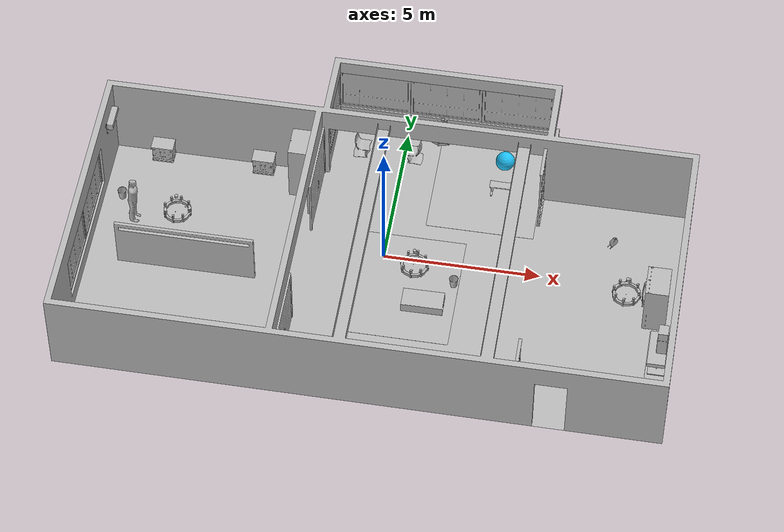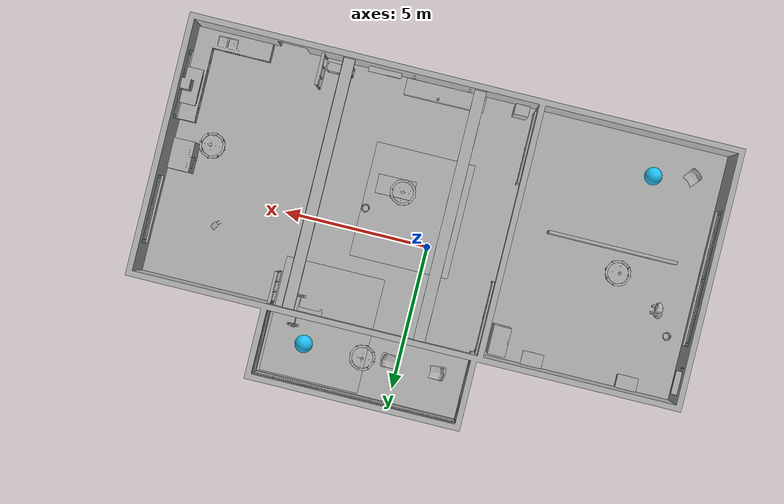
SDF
<sdf version="1.7">
 <world name="default">
  <gravity>0 0 -9.8</gravity>
  <magnetic_field>6e-06 2.3e-05 -4.2e-05</magnetic_field>
  <atmosphere type="adiabatic"/>
  <physics name="default_physics" default="0" type="ode">
   <max_step_size>0.001</max_step_size>
   <real_time_factor>1</real_time_factor>
   <real_time_update_rate>1000</real_time_update_rate>
  </physics>
  <scene>
   <ambient>0.4 0.4 0.4 1</ambient>
   <background>0.7 0.7 0.7 1</background>
   <shadows>0</shadows>
   <grid>0</grid>
   <origin_visual>0</origin_visual>
  </scene>
  <spherical_coordinates>
   <surface_model>EARTH_WGS84</surface_model>
   <latitude_deg>0</latitude_deg>
   <longitude_deg>0</longitude_deg>
   <elevation>0</elevation>
   <heading_deg>0</heading_deg>
  </spherical_coordinates>
  <model name="AirconditionerA_01_001">
   <static>1</static>
   <frame name="aws_robomaker_residential_AirconditionerA_01::__model__" attached_to="aws_robomaker_residential_AirconditionerA_01::link">
    <pose relative_to="__model__">0 0 0 0 -0 0</pose>
   </frame>
   <link name="aws_robomaker_residential_AirconditionerA_01::link">
    <inertial><mass>1</mass></inertial>
    <collision name="collision">
     <geometry>
      <mesh>
       <uri>model://aws_robomaker_residential_AirconditionerA_01/meshes/aws_AirconditionerA_01_collision.DAE</uri>
       <scale>1 1 1</scale>
      </mesh>
     </geometry>
    </collision>
    <visual name="visual">
     <geometry>
      <mesh>
       <uri>model://aws_robomaker_residential_AirconditionerA_01/meshes/aws_AirconditionerA_01_visual.DAE</uri>
      </mesh>
     </geometry>
     <meta><layer>1</layer></meta>
    </visual>
    <pose relative_to="aws_robomaker_residential_AirconditionerA_01::__model__">0 0 0 0 -0 0</pose>
   </link>
   <static>1</static>
   <pose>-9.19941 2.41123 2.08454 0 -0 0</pose>
  </model>
  <model name="AirconditionerB_01_001">
   <static>1</static>
   <frame name="aws_robomaker_residential_AirconditionerB_01::__model__" attached_to="aws_robomaker_residential_AirconditionerB_01::link">
    <pose relative_to="__model__">0 0 0 0 -0 0</pose>
   </frame>
   <link name="aws_robomaker_residential_AirconditionerB_01::link">
    <inertial><mass>1</mass></inertial>
    <collision name="collision">
     <geometry>
      <mesh>
       <uri>model://aws_robomaker_residential_AirconditionerB_01/meshes/aws_AirconditionerB_01_collision.DAE</uri>
       <scale>1 1 1</scale>
      </mesh>
     </geometry>
    </collision>
    <visual name="visual">
     <geometry>
      <mesh>
       <uri>model://aws_robomaker_residential_AirconditionerB_01/meshes/aws_AirconditionerB_01_visual.DAE</uri>
      </mesh>
     </geometry>
     <meta><layer>1</layer></meta>
    </visual>
    <pose relative_to="aws_robomaker_residential_AirconditionerB_01::__model__">0 0 0 0 -0 0</pose>
   </link>
   <pose>-2.00466 -5.22661 0.003485 0 -0 0</pose>
  </model>
  <model name="Ball_01_001">
   <static>1</static>
   <frame name="aws_robomaker_residential_Ball_01::__model__" attached_to="aws_robomaker_residential_Ball_01::link">
    <pose relative_to="__model__">0 0 0 0 -0 0</pose>
   </frame>
   <link name="aws_robomaker_residential_Ball_01::link">
    <inertial>
     <mass>0.12</mass>
     <inertia>
      <ixx>0.030752</ixx>
      <ixy>0</ixy>
      <ixz>0</ixz>
      <iyy>0.030752</iyy>
      <iyz>0</iyz>
      <izz>0.030752</izz>
     </inertia>
    </inertial>
    <collision name="collision">
     <geometry><sphere><radius>0.31</radius></sphere></geometry>
     <surface>
      <friction><ode><mu>0.85</mu><mu2>0.85</mu2></ode></friction>
      <contact><ode><kd>8500</kd><max_vel>5.1</max_vel></ode></contact>
     </surface>
    </collision>
    <visual name="visual">
     <geometry><sphere><radius>0.31</radius></sphere></geometry>
     <material><diffuse>0.12 0.76 0.97 1</diffuse><ambient>0.03 0.21 0.27 1</ambient></material>
     <meta><layer>1</layer></meta>
    </visual>
    <pose relative_to="aws_robomaker_residential_Ball_01::__model__">0 0 0 0 -0 0</pose>
   </link>
   <pose>3.2955 4.22567 0.318684 0 -0 0</pose>
  </model>
  <model name="Ball_01_003">
   <static>1</static>
   <frame name="aws_robomaker_residential_Ball_01::__model__" attached_to="aws_robomaker_residential_Ball_01::link">
    <pose relative_to="__model__">0 0 0 0 -0 0</pose>
   </frame>
   <link name="aws_robomaker_residential_Ball_01::link">
    <inertial>
     <mass>0.12</mass>
     <inertia>
      <ixx>0.030752</ixx>
      <ixy>0</ixy>
      <ixz>0</ixz>
      <iyy>0.030752</iyy>
      <iyz>0</iyz>
      <izz>0.030752</izz>
     </inertia>
    </inertial>
    <collision name="collision">
     <geometry><sphere><radius>0.31</radius></sphere></geometry>
     <surface>
      <friction><ode><mu>0.85</mu><mu2>0.85</mu2></ode></friction>
      <contact><ode><kd>8500</kd><max_vel>5.1</max_vel></ode></contact>
     </surface>
    </collision>
    <visual name="visual">
     <geometry><sphere><radius>0.31</radius></sphere></geometry>
     <material><diffuse>0.12 0.76 0.97 1</diffuse><ambient>0.03 0.21 0.27 1</ambient></material>
     <meta><layer>1</layer></meta>
    </visual>
    <pose relative_to="aws_robomaker_residential_Ball_01::__model__">0 0 0 0 -0 0</pose>
   </link>
   <pose>-6.9455 -4.22174 0.318684 0 -0 0</pose>
  </model>
  <model name="NightStand_01_001">
   <static>1</static>
   <frame name="aws_robomaker_residential_NightStand_01::__model__" attached_to="aws_robomaker_residential_NightStand_01::link">
    <pose relative_to="__model__">0 0 0 0 -0 0</pose>
   </frame>
   <link name="aws_robomaker_residential_NightStand_01::link">
    <inertial>
     <mass>13.6</mass>
     <inertia><ixx>0.6165</ixx><ixy>0</ixy><ixz>0</ixz><iyy>1.29664</iyy><iyz>0</iyz><izz>0.7706</izz></inertia>
    </inertial>
    <collision name="collision">
     <geometry>
      <mesh>
       <uri>model://aws_robomaker_residential_NightStand_01/meshes/aws_NightStand_01_collision.DAE</uri>
       <scale>1 1 1</scale>
      </mesh>
     </geometry>
    </collision>
    <visual name="visual">
     <geometry>
      <mesh><uri>model://aws_robomaker_residential_NightStand_01/meshes/aws_NightStand_01_visual.DAE</uri></mesh>
     </geometry>
     <meta><layer>1</layer></meta>
    </visual>
    <pose relative_to="aws_robomaker_residential_NightStand_01::__model__">0 0 0 0 -0 0</pose>
   </link>
   <static>1</static>
   <pose>-7.72551 2.86042 0.005258 -2e-06 0 0</pose>
  </model>
  <model name="NightStand_01_002">
   <static>1</static>
   <frame name="aws_robomaker_residential_NightStand_01::__model__" attached_to="aws_robomaker_residential_NightStand_01::link">
    <pose relative_to="__model__">0 0 0 0 -0 0</pose>
   </frame>
   <link name="aws_robomaker_residential_NightStand_01::link">
    <inertial>
     <mass>13.6</mass>
     <inertia><ixx>0.6165</ixx><ixy>0</ixy><ixz>0</ixz><iyy>1.29664</iyy><iyz>0</iyz><izz>0.7706</izz></inertia>
    </inertial>
    <collision name="collision">
     <geometry>
      <mesh>
       <uri>model://aws_robomaker_residential_NightStand_01/meshes/aws_NightStand_01_collision.DAE</uri>
       <scale>1 1 1</scale>
      </mesh>
     </geometry>
    </collision>
    <visual name="visual">
     <geometry>
      <mesh><uri>model://aws_robomaker_residential_NightStand_01/meshes/aws_NightStand_01_visual.DAE</uri></mesh>
     </geometry>
     <meta><layer>1</layer></meta>
    </visual>
    <pose relative_to="aws_robomaker_residential_NightStand_01::__model__">0 0 0 0 -0 0</pose>
   </link>
   <static>1</static>
   <pose>-4.40734 2.86042 0.005256 0 2e-06 0</pose>
  </model>
  <model name="Board_01_001">
   <static>1</static>
   <frame name="aws_robomaker_residential_Board_01::__model__" attached_to="aws_robomaker_residential_Board_01::link">
    <pose relative_to="__model__">0 0 0 0 -0 0</pose>
   </frame>
   <link name="aws_robomaker_residential_Board_01::link">
    <inertial><mass>1</mass></inertial>
    <collision name="collision">
     <geometry>
      <mesh>
       <uri>model://aws_robomaker_residential_Board_01/meshes/aws_Board_01_collision.DAE</uri>
       <scale>1 1 1</scale>
      </mesh>
     </geometry>
    </collision>
    <visual name="visual">
     <geometry>
      <mesh><uri>model://aws_robomaker_residential_Board_01/meshes/aws_Board_01_visual.DAE</uri></mesh>
     </geometry>
     <meta><layer>2</layer></meta>
    </visual>
    <pose relative_to="aws_robomaker_residential_Board_01::__model__">0 0 0 0 -0 0</pose>
   </link>
   <static>1</static>
   <pose>2.77907 -5.3927 1.53817 0 -0 0</pose>
  </model>
  <model name="ChairD_01_001">
   <static>1</static>
   <frame name="aws_robomaker_residential_ChairD_01::__model__" attached_to="aws_robomaker_residential_ChairD_01::link">
    <pose relative_to="__model__">0 0 0 0 -0 0</pose>
   </frame>
   <link name="aws_robomaker_residential_ChairD_01::link">
    <inertial>
     <mass>4.5</mass>
     <inertia><ixy>0</ixy><ixz>0</ixz><iyz>0</iyz><ixx>0.217</ixx><iyy>0.217</iyy><izz>0.067</izz></inertia>
    </inertial>
    <collision name="collision">
     <geometry>
      <mesh>
       <uri>model://aws_robomaker_residential_ChairD_01/meshes/aws_ChairD_01_collision.DAE</uri>
       <scale>1 1 1</scale>
      </mesh>
     </geometry>
    </collision>
    <visual name="visual">
     <geometry>
      <mesh><uri>model://aws_robomaker_residential_ChairD_01/meshes/aws_ChairD_01_visual.DAE</uri></mesh>
     </geometry>
     <meta><layer>1</layer></meta>
    </visual>
    <pose relative_to="aws_robomaker_residential_ChairD_01::__model__">0 0 0 0 -0 0</pose>
   </link>
   <pose>-1.38078 4.10446 0 0 -0 0</pose>
  </model>
  <model name="ChairD_01_002">
   <static>1</static>
   <frame name="aws_robomaker_residential_ChairD_01::__model__" attached_to="aws_robomaker_residential_ChairD_01::link">
    <pose relative_to="__model__">0 0 0 0 -0 0</pose>
   </frame>
   <link name="aws_robomaker_residential_ChairD_01::link">
    <inertial>
     <mass>4.5</mass>
     <inertia><ixy>0</ixy><ixz>0</ixz><iyz>0</iyz><ixx>0.217</ixx><iyy>0.217</iyy><izz>0.067</izz></inertia>
    </inertial>
    <collision name="collision">
     <geometry>
      <mesh>
       <uri>model://aws_robomaker_residential_ChairD_01/meshes/aws_ChairD_01_collision.DAE</uri>
       <scale>1 1 1</scale>
      </mesh>
     </geometry>
    </collision>
    <visual name="visual">
     <geometry>
      <mesh><uri>model://aws_robomaker_residential_ChairD_01/meshes/aws_ChairD_01_visual.DAE</uri></mesh>
     </geometry>
     <meta><layer>1</layer></meta>
    </visual>
    <pose relative_to="aws_robomaker_residential_ChairD_01::__model__">0 0 0 0 -0 0</pose>
   </link>
   <pose>0.325214 4.10446 0 0 0 -3.13874</pose>
  </model>
  <model name="ChairD_01_003">
   <static>1</static>
   <frame name="aws_robomaker_residential_ChairD_01::__model__" attached_to="aws_robomaker_residential_ChairD_01::link">
    <pose relative_to="__model__">0 0 0 0 -0 0</pose>
   </frame>
   <link name="aws_robomaker_residential_ChairD_01::link">
    <inertial>
     <mass>4.5</mass>
     <inertia><ixy>0</ixy><ixz>0</ixz><iyz>0</iyz><ixx>0.217</ixx><iyy>0.217</iyy><izz>0.067</izz></inertia>
    </inertial>
    <collision name="collision">
     <geometry>
      <mesh>
       <uri>model://aws_robomaker_residential_ChairD_01/meshes/aws_ChairD_01_collision.DAE</uri>
       <scale>1 1 1</scale>
      </mesh>
     </geometry>
    </collision>
    <visual name="visual">
     <geometry>
      <mesh><uri>model://aws_robomaker_residential_ChairD_01/meshes/aws_ChairD_01_visual.DAE</uri></mesh>
     </geometry>
     <meta><layer>1</layer></meta>
    </visual>
    <pose relative_to="aws_robomaker_residential_ChairD_01::__model__">0 0 0 0 -0 0</pose>
   </link>
   <pose>-8.27078 -4.50446 0 0 -0 0.869673</pose>
  </model>
  <model name="Chandelier_01_001">
   <static>1</static>
   <frame name="aws_robomaker_residential_Chandelier_01::__model__" attached_to="aws_robomaker_residential_Chandelier_01::link">
    <pose relative_to="__model__">0 0 0 0 -0 0</pose>
   </frame>
   <link name="aws_robomaker_residential_Chandelier_01::link">
    <inertial><mass>1</mass></inertial>
    <collision name="collision">
     <geometry>
      <mesh>
       <uri>model://aws_robomaker_residential_Chandelier_01/meshes/aws_Chandelier_01_collision.DAE</uri>
       <scale>1 1 1</scale>
      </mesh>
     </geometry>
    </collision>
    <visual name="visual">
     <geometry>
      <mesh><uri>model://aws_robomaker_residential_Chandelier_01/meshes/aws_Chandelier_01_visual.DAE</uri></mesh>
     </geometry>
     <meta><layer>2</layer></meta>
    </visual>
    <pose relative_to="aws_robomaker_residential_Chandelier_01::__model__">0 0 0 0 -0 0</pose>
   </link>
   <static>1</static>
   <pose>1.22106 4.15574 1.295 0 -0 0</pose>
  </model>
  <model name="Chandelier_01_002">
   <static>1</static>
   <frame name="aws_robomaker_residential_Chandelier_01::__model__" attached_to="aws_robomaker_residential_Chandelier_01::link">
    <pose relative_to="__model__">0 0 0 0 -0 0</pose>
   </frame>
   <link name="aws_robomaker_residential_Chandelier_01::link">
    <inertial><mass>1</mass></inertial>
    <collision name="collision">
     <geometry>
      <mesh>
       <uri>model://aws_robomaker_residential_Chandelier_01/meshes/aws_Chandelier_01_collision.DAE</uri>
       <scale>1 1 1</scale>
      </mesh>
     </geometry>
    </collision>
    <visual name="visual">
     <geometry>
      <mesh><uri>model://aws_robomaker_residential_Chandelier_01/meshes/aws_Chandelier_01_visual.DAE</uri></mesh>
     </geometry>
     <meta><layer>2</layer></meta>
    </visual>
    <pose relative_to="aws_robomaker_residential_Chandelier_01::__model__">0 0 0 0 -0 0</pose>
   </link>
   <static>1</static>
   <pose>-6.45106 -0.69204 1.81 0 -0 0</pose>
  </model>
  <model name="Chandelier_01_003">
   <static>1</static>
   <frame name="aws_robomaker_residential_Chandelier_01::__model__" attached_to="aws_robomaker_residential_Chandelier_01::link">
    <pose relative_to="__model__">0 0 0 0 -0 0</pose>
   </frame>
   <link name="aws_robomaker_residential_Chandelier_01::link">
    <inertial><mass>1</mass></inertial>
    <collision name="collision">
     <geometry>
      <mesh>
       <uri>model://aws_robomaker_residential_Chandelier_01/meshes/aws_Chandelier_01_collision.DAE</uri>
       <scale>1 1 1</scale>
      </mesh>
     </geometry>
    </collision>
    <visual name="visual">
     <geometry>
      <mesh><uri>model://aws_robomaker_residential_Chandelier_01/meshes/aws_Chandelier_01_visual.DAE</uri></mesh>
     </geometry>
     <meta><layer>2</layer></meta>
    </visual>
    <pose relative_to="aws_robomaker_residential_Chandelier_01::__model__">0 0 0 0 -0 0</pose>
   </link>
   <static>1</static>
   <pose>7.82406 -1.59 1.751 0 -0 0</pose>
  </model>
  <model name="Chandelier_01_004">
   <static>1</static>
   <frame name="aws_robomaker_residential_Chandelier_01::__model__" attached_to="aws_robomaker_residential_Chandelier_01::link">
    <pose relative_to="__model__">0 0 0 0 -0 0</pose>
   </frame>
   <link name="aws_robomaker_residential_Chandelier_01::link">
    <inertial><mass>1</mass></inertial>
    <collision name="collision">
     <geometry>
      <mesh>
       <uri>model://aws_robomaker_residential_Chandelier_01/meshes/aws_Chandelier_01_collision.DAE</uri>
       <scale>1 1 1</scale>
      </mesh>
     </geometry>
    </collision>
    <visual name="visual">
     <geometry>
      <mesh><uri>model://aws_robomaker_residential_Chandelier_01/meshes/aws_Chandelier_01_visual.DAE</uri></mesh>
     </geometry>
     <meta><layer>2</layer></meta>
    </visual>
    <pose relative_to="aws_robomaker_residential_Chandelier_01::__model__">0 0 0 0 -0 0</pose>
   </link>
   <static>1</static>
   <pose>1.22106 -1.59204 1.7873 0 -0 0</pose>
  </model>
  <model name="Carpet_01_001">
   <static>1</static>
   <frame name="aws_robomaker_residential_Carpet_01::__model__" attached_to="aws_robomaker_residential_Carpet_01::link">
    <pose relative_to="__model__">0 0 0 0 -0 0</pose>
   </frame>
   <link name="aws_robomaker_residential_Carpet_01::link">
    <inertial><mass>8.1</mass></inertial>
    <collision name="collision">
     <geometry>
      <mesh>
       <uri>model://aws_robomaker_residential_Carpet_01/meshes/aws_Carpet_01_collision.DAE</uri>
       <scale>1 1 0.95</scale>
      </mesh>
     </geometry>
     <surface><friction><ode><mu>100</mu><mu2>50</mu2></ode></friction></surface>
     <pose>0 0 -0.01 0 -0 0</pose>
    </collision>
    <visual name="visual">
     <geometry>
      <mesh><uri>model://aws_robomaker_residential_Carpet_01/meshes/aws_Carpet_01_visual.DAE</uri></mesh>
     </geometry>
     <meta><layer>1</layer></meta>
    </visual>
    <pose relative_to="aws_robomaker_residential_Carpet_01::__model__">0 0 0 0 -0 0</pose>
   </link>
   <static>1</static>
   <pose>0.78505 -1.10665 0.001106 0 -0 0</pose>
  </model>
  <model name="Carpet_01_002">
   <static>1</static>
   <frame name="aws_robomaker_residential_Carpet_01::__model__" attached_to="aws_robomaker_residential_Carpet_01::link">
    <pose relative_to="__model__">0 0 0 0 -0 0</pose>
   </frame>
   <link name="aws_robomaker_residential_Carpet_01::link">
    <inertial><mass>8.1</mass></inertial>
    <collision name="collision">
     <geometry>
      <mesh>
       <uri>model://aws_robomaker_residential_Carpet_01/meshes/aws_Carpet_01_collision.DAE</uri>
       <scale>1 1 0.95</scale>
      </mesh>
     </geometry>
     <surface><friction><ode><mu>100</mu><mu2>50</mu2></ode></friction></surface>
     <pose>0 0 -0.01 0 -0 0</pose>
    </collision>
    <visual name="visual">
     <geometry>
      <mesh><uri>model://aws_robomaker_residential_Carpet_01/meshes/aws_Carpet_01_visual.DAE</uri></mesh>
     </geometry>
     <meta><layer>1</layer></meta>
    </visual>
    <pose relative_to="aws_robomaker_residential_Carpet_01::__model__">0 0 0 0 -0 0</pose>
   </link>
   <static>1</static>
   <pose>2.85405 3.45 0.000585 0 -0 0</pose>
  </model>
  <model name="SecurityCamera_01_001">
   <static>1</static>
   <frame name="aws_robomaker_residential_SecurityCamera_01::__model__" attached_to="aws_robomaker_residential_SecurityCamera_01::link">
    <pose relative_to="__model__">0 0 0 0 -0 0</pose>
   </frame>
   <link name="aws_robomaker_residential_SecurityCamera_01::link">
    <inertial>
     <mass>1</mass>
     <inertia>
      <ixx>18.2222</ixx>
      <ixy>0</ixy>
      <ixz>0</ixz>
      <iyy>18.2222</iyy>
      <iyz>0</iyz>
      <izz>0.0018767</izz>
     </inertia>
    </inertial>
    <collision name="collision">
     <geometry>
      <mesh>
       <uri>model://aws_robomaker_residential_SecurityCamera_01/meshes/aws_SecurityCamera_01_collision.DAE</uri>
       <scale>1 1 1</scale>
      </mesh>
     </geometry>
    </collision>
    <visual name="visual">
     <geometry>
      <mesh>
       <uri>model://aws_robomaker_residential_SecurityCamera_01/meshes/aws_SecurityCamera_01_visual.DAE</uri>
      </mesh>
     </geometry>
     <meta><layer>2</layer></meta>
    </visual>
    <pose relative_to="aws_robomaker_residential_SecurityCamera_01::__model__">0 0 0 0 -0 0</pose>
   </link>
   <pose>0.842134 -4.99629 0.495067 0 0 -2.84104</pose>
  </model>
  <model name="CoffeeTable_01_001">
   <static>1</static>
   <frame name="aws_robomaker_residential_CoffeeTable_01::__model__" attached_to="aws_robomaker_residential_CoffeeTable_01::link">
    <pose relative_to="__model__">0 0 0 0 -0 0</pose>
   </frame>
   <link name="aws_robomaker_residential_CoffeeTable_01::link">
    <inertial>
     <mass>21.7</mass>
     <inertia><ixx>0.81375</ixx><ixy>0</ixy><ixz>0</ixz><iyy>2.76675</iyy><iyz>0</iyz><izz>3.254</izz></inertia>
    </inertial>
    <collision name="collision">
     <geometry>
      <mesh>
       <uri>model://aws_robomaker_residential_CoffeeTable_01/meshes/aws_CoffeeTable_01_collision.DAE</uri>
       <scale>1 1 1</scale>
      </mesh>
     </geometry>
     <surface><contact><ode><max_vel>0.01</max_vel></ode></contact></surface>
    </collision>
    <visual name="visual">
     <geometry>
      <mesh><uri>model://aws_robomaker_residential_CoffeeTable_01/meshes/aws_CoffeeTable_01_visual.DAE</uri></mesh>
     </geometry>
     <meta><layer>1</layer></meta>
    </visual>
    <pose relative_to="aws_robomaker_residential_CoffeeTable_01::__model__">0 0 0 0 -0 0</pose>
   </link>
   <static>1</static>
   <pose>1.5123 -1.73344 0.041983 0 -0 0.01</pose>
  </model>
  <model name="CookingBench_01_001">
   <frame name="aws_robomaker_residential_CookingBench_01::__model__" attached_to="aws_robomaker_residential_CookingBench_01::link">
    <pose relative_to="__model__">0 0 0 0 -0 0</pose>
   </frame>
   <link name="aws_robomaker_residential_CookingBench_01::link">
    <inertial><mass>1</mass></inertial>
    <collision name="collision">
     <geometry>
      <mesh>
       <uri>model://aws_robomaker_residential_CookingBench_01/meshes/aws_CookingBench_01_collision.DAE</uri>
       <scale>1 1 1</scale>
      </mesh>
     </geometry>
    </collision>
    <visual name="visual">
     <geometry>
      <mesh>
       <uri>model://aws_robomaker_residential_CookingBench_01/meshes/aws_CookingBench_01_visual.DAE</uri>
      </mesh>
     </geometry>
     <meta><layer>1</layer></meta>
    </visual>
    <pose relative_to="aws_robomaker_residential_CookingBench_01::__model__">0 0 0 0 -0 0</pose>
   </link>
   <pose>9.03838 -3.35114 0.90361 0 -0 3.13713</pose>
   <static>1</static>
  </model>
  <model name="FitnessEquipment_01_001">
   <static>1</static>
   <frame name="aws_robomaker_residential_FitnessEquipment_01::__model__" attached_to="aws_robomaker_residential_FitnessEquipment_01::link">
    <pose relative_to="__model__">0 0 0 0 -0 0</pose>
   </frame>
   <link name="aws_robomaker_residential_FitnessEquipment_01::link">
    <inertial><mass>80</mass></inertial>
    <collision name="collision">
     <geometry>
      <mesh>
       <uri>model://aws_robomaker_residential_FitnessEquipment_01/meshes/aws_FitnessEquipment_01_collision.DAE</uri>
       <scale>1 1 1</scale>
      </mesh>
     </geometry>
    </collision>
    <visual name="visual">
     <geometry>
      <mesh>
       <uri>model://aws_robomaker_residential_FitnessEquipment_01/meshes/aws_FitnessEquipment_01_visual.DAE</uri>
      </mesh>
     </geometry>
     <meta><layer>1</layer></meta>
    </visual>
    <pose relative_to="aws_robomaker_residential_FitnessEquipment_01::__model__">0 0 0 0 -0 0</pose>
   </link>
   <static>1</static>
   <pose>3.48472 3.1691 0.003168 0 -0 0</pose>
  </model>
  <model name="FoldingDoor_01_001">
   <static>1</static>
   <frame name="aws_robomaker_residential_FoldingDoor_01::__model__" attached_to="aws_robomaker_residential_FoldingDoor_01::link">
    <pose relative_to="__model__">0 0 0 0 -0 0</pose>
   </frame>
   <link name="aws_robomaker_residential_FoldingDoor_01::link">
    <inertial><mass>1</mass></inertial>
    <collision name="collision">
     <geometry>
      <mesh>
       <uri>model://aws_robomaker_residential_FoldingDoor_01/meshes/aws_FoldingDoor_01_collision.DAE</uri>
       <scale>1 1 1</scale>
      </mesh>
     </geometry>
    </collision>
    <visual name="visual">
     <geometry>
      <mesh><uri>model://aws_robomaker_residential_FoldingDoor_01/meshes/aws_FoldingDoor_01_visual.DAE</uri></mesh>
     </geometry>
     <meta><layer>2</layer></meta>
    </visual>
    <pose relative_to="aws_robomaker_residential_FoldingDoor_01::__model__">0 0 0 0 -0 0</pose>
   </link>
   <static>1</static>
   <pose>-2.4611 1.84422 0.041881 0 -0 0</pose>
  </model>
  <model name="FoldingDoor_01_002">
   <static>1</static>
   <frame name="aws_robomaker_residential_FoldingDoor_01::__model__" attached_to="aws_robomaker_residential_FoldingDoor_01::link">
    <pose relative_to="__model__">0 0 0 0 -0 0</pose>
   </frame>
   <link name="aws_robomaker_residential_FoldingDoor_01::link">
    <inertial><mass>1</mass></inertial>
    <collision name="collision">
     <geometry>
      <mesh>
       <uri>model://aws_robomaker_residential_FoldingDoor_01/meshes/aws_FoldingDoor_01_collision.DAE</uri>
       <scale>1 1 1</scale>
      </mesh>
     </geometry>
    </collision>
    <visual name="visual">
     <geometry>
      <mesh><uri>model://aws_robomaker_residential_FoldingDoor_01/meshes/aws_FoldingDoor_01_visual.DAE</uri></mesh>
     </geometry>
     <meta><layer>2</layer></meta>
    </visual>
    <pose relative_to="aws_robomaker_residential_FoldingDoor_01::__model__">0 0 0 0 -0 0</pose>
   </link>
   <static>1</static>
   <pose>-2.4611 -4.05332 0.041881 0 -0 0</pose>
  </model>
  <model name="HouseWallB_01_001">
   <static>1</static>
   <frame name="aws_robomaker_residential_HouseWallB_01::__model__" attached_to="aws_robomaker_residential_HouseWallB_01::link">
    <pose relative_to="__model__">0 0 0 0 -0 0</pose>
   </frame>
   <link name="aws_robomaker_residential_HouseWallB_01::link">
    <inertial><mass>1</mass></inertial>
    <collision name="collision">
     <geometry>
      <mesh>
       <uri>model://aws_robomaker_residential_HouseWallB_01/meshes/aws_HouseWallB_01_collision.DAE</uri>
       <scale>1 1 1</scale>
      </mesh>
     </geometry>
    </collision>
    <visual name="visual">
     <geometry>
      <mesh><uri>model://aws_robomaker_residential_HouseWallB_01/meshes/aws_HouseWallB_01_visual.DAE</uri></mesh>
     </geometry>
     <meta><layer>2</layer></meta>
    </visual>
    <pose relative_to="aws_robomaker_residential_HouseWallB_01::__model__">0 0 0 0 -0 0</pose>
   </link>
   <static>1</static>
  </model>
  <model name="FloorB_01_001">
   <static>1</static>
   <frame name="aws_robomaker_residential_FloorB_01::__model__" attached_to="aws_robomaker_residential_FloorB_01::link">
    <pose relative_to="__model__">0 0 0 0 -0 0</pose>
   </frame>
   <link name="aws_robomaker_residential_FloorB_01::link">
    <inertial><mass>100</mass></inertial>
    <collision name="collision">
     <geometry>
      <mesh>
       <uri>model://aws_robomaker_residential_FloorB_01/meshes/aws_FloorB_01_collision.DAE</uri>
       <scale>1 1 0.9</scale>
      </mesh>
     </geometry>
     <surface><friction><ode><mu>100</mu><mu2>50</mu2></ode></friction></surface>
    </collision>
    <visual name="visual">
     <geometry>
      <mesh><uri>model://aws_robomaker_residential_FloorB_01/meshes/aws_FloorB_01_visual.DAE</uri></mesh>
     </geometry>
     <meta><layer>1</layer></meta>
    </visual>
    <pose relative_to="aws_robomaker_residential_FloorB_01::__model__">0 0 0 0 -0 0</pose>
   </link>
   <static>1</static>
  </model>
  <model name="FoldingDoor_02_001">
   <static>1</static>
   <frame name="aws_robomaker_residential_FoldingDoor_02::__model__" attached_to="aws_robomaker_residential_FoldingDoor_02::link">
    <pose relative_to="__model__">0 0 0 0 -0 0</pose>
   </frame>
   <link name="aws_robomaker_residential_FoldingDoor_02::link">
    <inertial><mass>1</mass></inertial>
    <collision name="collision">
     <geometry>
      <mesh>
       <uri>model://aws_robomaker_residential_FoldingDoor_02/meshes/aws_FoldingDoor_02_collision.DAE</uri>
       <scale>1 1 1</scale>
      </mesh>
     </geometry>
    </collision>
    <visual name="visual">
     <geometry>
      <mesh><uri>model://aws_robomaker_residential_FoldingDoor_02/meshes/aws_FoldingDoor_02_visual.DAE</uri></mesh>
     </geometry>
     <meta><layer>2</layer></meta>
    </visual>
    <pose relative_to="aws_robomaker_residential_FoldingDoor_02::__model__">0 0 0 0 -0 0</pose>
   </link>
   <static>1</static>
   <pose>4.67423 2.46451 0 0 -0 3.14159</pose>
  </model>
  <model name="FoldingDoor_02_002">
   <static>1</static>
   <frame name="aws_robomaker_residential_FoldingDoor_02::__model__" attached_to="aws_robomaker_residential_FoldingDoor_02::link">
    <pose relative_to="__model__">0 0 0 0 -0 0</pose>
   </frame>
   <link name="aws_robomaker_residential_FoldingDoor_02::link">
    <inertial><mass>1</mass></inertial>
    <collision name="collision">
     <geometry>
      <mesh>
       <uri>model://aws_robomaker_residential_FoldingDoor_02/meshes/aws_FoldingDoor_02_collision.DAE</uri>
       <scale>1 1 1</scale>
      </mesh>
     </geometry>
    </collision>
    <visual name="visual">
     <geometry>
      <mesh><uri>model://aws_robomaker_residential_FoldingDoor_02/meshes/aws_FoldingDoor_02_visual.DAE</uri></mesh>
     </geometry>
     <meta><layer>2</layer></meta>
    </visual>
    <pose relative_to="aws_robomaker_residential_FoldingDoor_02::__model__">0 0 0 0 -0 0</pose>
   </link>
   <static>1</static>
   <pose>4.8912 -4.84968 0 0 -0 0</pose>
  </model>
  <model name="KitchenCabinet_01_001">
   <static>1</static>
   <frame name="aws_robomaker_residential_KitchenCabinet_01::__model__" attached_to="aws_robomaker_residential_KitchenCabinet_01::link">
    <pose relative_to="__model__">0 0 0 0 -0 0</pose>
   </frame>
   <link name="aws_robomaker_residential_KitchenCabinet_01::link">
    <inertial><mass>1</mass></inertial>
    <collision name="collision">
     <geometry>
      <mesh>
       <uri>model://aws_robomaker_residential_KitchenCabinet_01/meshes/aws_KitchenCabinet_01_collision.DAE</uri>
       <scale>1 1 1</scale>
      </mesh>
     </geometry>
    </collision>
    <visual name="visual">
     <geometry>
      <mesh>
       <uri>model://aws_robomaker_residential_KitchenCabinet_01/meshes/aws_KitchenCabinet_01_visual.DAE</uri>
      </mesh>
     </geometry>
     <meta><layer>1</layer></meta>
    </visual>
    <pose relative_to="aws_robomaker_residential_KitchenCabinet_01::__model__">0 0 0 0 -0 0</pose>
   </link>
   <static>1</static>
   <pose>8.00201 -3.83651 0.012068 0 0 -3.14</pose>
  </model>
  <model name="LightC_01_001">
   <static>1</static>
   <frame name="aws_robomaker_residential_LightC_01::__model__" attached_to="aws_robomaker_residential_LightC_01::link">
    <pose relative_to="__model__">0 0 0 0 -0 0</pose>
   </frame>
   <link name="aws_robomaker_residential_LightC_01::link">
    <inertial><mass>1</mass></inertial>
    <collision name="collision">
     <geometry>
      <mesh>
       <uri>model://aws_robomaker_residential_LightC_01/meshes/aws_LightC_01_collision.DAE</uri>
       <scale>1 1 1</scale>
      </mesh>
     </geometry>
    </collision>
    <visual name="visual">
     <geometry>
      <mesh><uri>model://aws_robomaker_residential_LightC_01/meshes/aws_LightC_01_visual.DAE</uri></mesh>
     </geometry>
     <meta><layer>2</layer></meta>
    </visual>
    <pose relative_to="aws_robomaker_residential_LightC_01::__model__">0 0 0 0 -0 0</pose>
   </link>
   <static>1</static>
   <pose>1.76957 -5.44437 2 0 -0 0</pose>
  </model>
  <model name="LightC_01_002">
   <static>1</static>
   <frame name="aws_robomaker_residential_LightC_01::__model__" attached_to="aws_robomaker_residential_LightC_01::link">
    <pose relative_to="__model__">0 0 0 0 -0 0</pose>
   </frame>
   <link name="aws_robomaker_residential_LightC_01::link">
    <inertial><mass>1</mass></inertial>
    <collision name="collision">
     <geometry>
      <mesh>
       <uri>model://aws_robomaker_residential_LightC_01/meshes/aws_LightC_01_collision.DAE</uri>
       <scale>1 1 1</scale>
      </mesh>
     </geometry>
    </collision>
    <visual name="visual">
     <geometry>
      <mesh><uri>model://aws_robomaker_residential_LightC_01/meshes/aws_LightC_01_visual.DAE</uri></mesh>
     </geometry>
     <meta><layer>2</layer></meta>
    </visual>
    <pose relative_to="aws_robomaker_residential_LightC_01::__model__">0 0 0 0 -0 0</pose>
   </link>
   <static>1</static>
   <pose>-0.138245 -5.44437 2 0 -0 0</pose>
  </model>
  <model name="Rangehood_01_001">
   <static>1</static>
   <frame name="aws_robomaker_residential_Rangehood_01::__model__" attached_to="aws_robomaker_residential_Rangehood_01::link">
    <pose relative_to="__model__">0 0 0 0 -0 0</pose>
   </frame>
   <link name="aws_robomaker_residential_Rangehood_01::link">
    <inertial><mass>1</mass></inertial>
    <collision name="collision">
     <geometry>
      <mesh>
       <uri>model://aws_robomaker_residential_Rangehood_01/meshes/aws_Rangehood_01_collision.DAE</uri>
       <scale>1 1 1</scale>
      </mesh>
     </geometry>
    </collision>
    <visual name="visual">
     <geometry>
      <mesh><uri>model://aws_robomaker_residential_Rangehood_01/meshes/aws_Rangehood_01_visual.DAE</uri></mesh>
     </geometry>
     <meta><layer>2</layer></meta>
    </visual>
    <pose relative_to="aws_robomaker_residential_Rangehood_01::__model__">0 0 0 0 -0 0</pose>
   </link>
   <static>1</static>
   <pose>9.01979 -3.36994 1.50761 0 -0 0</pose>
  </model>
  <model name="Refrigerator_01_001">
   <static>1</static>
   <frame name="aws_robomaker_residential_Refrigerator_01::__model__" attached_to="aws_robomaker_residential_Refrigerator_01::link">
    <pose relative_to="__model__">0 0 0 0 -0 0</pose>
   </frame>
   <link name="aws_robomaker_residential_Refrigerator_01::link">
    <inertial><mass>1</mass></inertial>
    <collision name="collision">
     <geometry>
      <mesh>
       <uri>model://aws_robomaker_residential_Refrigerator_01/meshes/aws_Refrigerator_01_collision.DAE</uri>
       <scale>1 1 1</scale>
      </mesh>
     </geometry>
    </collision>
    <visual name="visual">
     <geometry>
      <mesh>
       <uri>model://aws_robomaker_residential_Refrigerator_01/meshes/aws_Refrigerator_01_visual.DAE</uri>
      </mesh>
     </geometry>
     <meta><layer>1</layer></meta>
    </visual>
    <pose relative_to="aws_robomaker_residential_Refrigerator_01::__model__">0 0 0 0 -0 0</pose>
   </link>
   <static>1</static>
   <pose>8.70273 -1.03203 0 0 0 -1.5635</pose>
  </model>
  <model name="ShoeRack_01_001">
   <static>1</static>
   <frame name="aws_robomaker_residential_ShoeRack_01::__model__" attached_to="aws_robomaker_residential_ShoeRack_01::link">
    <pose relative_to="__model__">0 0 0 0 -0 0</pose>
   </frame>
   <link name="aws_robomaker_residential_ShoeRack_01::link">
    <inertial>
     <mass>6</mass>
     <inertia>
      <ixx>0.02</ixx>
      <ixy>0</ixy>
      <ixz>0</ixz>
      <iyy>0.04</iyy>
      <iyz>0</iyz>
      <ixx>0.02</ixx>
      <izz>1</izz>
     </inertia>
    </inertial>
    <collision name="collision">
     <geometry>
      <mesh>
       <uri>model://aws_robomaker_residential_ShoeRack_01/meshes/aws_ShoeRack_01_collision.DAE</uri>
       <scale>1 1 1</scale>
      </mesh>
     </geometry>
     <surface>
      <friction><ode><mu>0.2</mu><mu2>0.2</mu2></ode></friction>
      <contact><ode><kd>2500</kd></ode></contact>
     </surface>
    </collision>
    <visual name="visual">
     <geometry>
      <mesh><uri>model://aws_robomaker_residential_ShoeRack_01/meshes/aws_ShoeRack_01_visual.DAE</uri></mesh>
     </geometry>
     <meta><layer>1</layer></meta>
    </visual>
    <pose relative_to="aws_robomaker_residential_ShoeRack_01::__model__">0 0 0 0 -0 0</pose>
   </link>
   <pose>4.29798 -5.17357 0 0 -0 0</pose>
  </model>
  <model name="Tableware_01_001">
   <static>1</static>
   <frame name="aws_robomaker_residential_Tableware_01::__model__" attached_to="aws_robomaker_residential_Tableware_01::link">
    <pose relative_to="__model__">0 0 0 0 -0 0</pose>
   </frame>
   <link name="aws_robomaker_residential_Tableware_01::link">
    <inertial><mass>1</mass></inertial>
    <collision name="collision">
     <geometry>
      <mesh>
       <uri>model://aws_robomaker_residential_Tableware_01/meshes/aws_Tableware_01_collision.DAE</uri>
       <scale>1 1 1</scale>
      </mesh>
     </geometry>
    </collision>
    <visual name="visual">
     <geometry>
      <mesh><uri>model://aws_robomaker_residential_Tableware_01/meshes/aws_Tableware_01_visual.DAE</uri></mesh>
     </geometry>
     <meta><layer>1</layer></meta>
    </visual>
    <pose relative_to="aws_robomaker_residential_Tableware_01::__model__">0 0 0 0 -0 0</pose>
   </link>
   <pose>7.15317 0.982767 0.817812 -0.001238 -0.000976 1.02476</pose>
  </model>
  <model name="Trash_01_001">
   <static>1</static>
   <frame name="aws_robomaker_residential_Trash_01::__model__" attached_to="aws_robomaker_residential_Trash_01::link">
    <pose relative_to="__model__">0 0 0 0 -0 0</pose>
   </frame>
   <link name="aws_robomaker_residential_Trash_01::link">
    <inertial>
     <mass>0.1</mass>
     <inertia><ixy>0</ixy><ixz>0</ixz><iyz>0</iyz><ixx>0.05288</ixx><iyy>0.05288</iyy><izz>0.09132</izz></inertia>
    </inertial>
    <collision name="collision">
     <geometry>
      <mesh>
       <uri>model://aws_robomaker_residential_Trash_01/meshes/aws_Trash_01_collision.DAE</uri>
       <scale>1 1 1</scale>
      </mesh>
     </geometry>
    </collision>
    <visual name="visual">
     <geometry>
      <mesh><uri>model://aws_robomaker_residential_Trash_01/meshes/aws_Trash_01_visual.DAE</uri></mesh>
     </geometry>
     <meta><layer>1</layer></meta>
    </visual>
    <pose relative_to="aws_robomaker_residential_Trash_01::__model__">0 0 0 0 -0 0</pose>
   </link>
   <pose>2.36015 -0.796238 0.011 0 -0 0</pose>
  </model>
  <model name="Trash_01_002">
   <static>1</static>
   <frame name="aws_robomaker_residential_Trash_01::__model__" attached_to="aws_robomaker_residential_Trash_01::link">
    <pose relative_to="__model__">0 0 0 0 -0 0</pose>
   </frame>
   <link name="aws_robomaker_residential_Trash_01::link">
    <inertial>
     <mass>0.1</mass>
     <inertia><ixy>0</ixy><ixz>0</ixz><iyz>0</iyz><ixx>0.05288</ixx><iyy>0.05288</iyy><izz>0.09132</izz></inertia>
    </inertial>
    <collision name="collision">
     <geometry>
      <mesh>
       <uri>model://aws_robomaker_residential_Trash_01/meshes/aws_Trash_01_collision.DAE</uri>
       <scale>1 1 1</scale>
      </mesh>
     </geometry>
    </collision>
    <visual name="visual">
     <geometry>
      <mesh><uri>model://aws_robomaker_residential_Trash_01/meshes/aws_Trash_01_visual.DAE</uri></mesh>
     </geometry>
     <meta><layer>1</layer></meta>
    </visual>
    <pose relative_to="aws_robomaker_residential_Trash_01::__model__">0 0 0 0 -0 0</pose>
   </link>
   <pose>-8.70415 1.00058 0.011 0 -0 0</pose>
  </model>
  <model name="TVCabinet_01_001">
   <static>1</static>
   <frame name="aws_robomaker_residential_TVCabinet_01::__model__" attached_to="aws_robomaker_residential_TVCabinet_01::link">
    <pose relative_to="__model__">0 0 0 0 -0 0</pose>
   </frame>
   <link name="aws_robomaker_residential_TVCabinet_01::link">
    <inertial>
     <mass>59.2</mass>
     <inertia><ixx>30.4</ixx><ixy>0</ixy><ixz>0</ixz><iyy>2.56</iyy><iyz>0</iyz><izz>31.38</izz></inertia>
    </inertial>
    <collision name="collision">
     <geometry>
      <mesh>
       <uri>model://aws_robomaker_residential_TVCabinet_01/meshes/aws_TVCabinet_01_collision.DAE</uri>
       <scale>1 1 1</scale>
      </mesh>
     </geometry>
    </collision>
    <visual name="visual">
     <geometry>
      <mesh><uri>model://aws_robomaker_residential_TVCabinet_01/meshes/aws_TVCabinet_01_visual.DAE</uri></mesh>
     </geometry>
     <meta><layer>1</layer></meta>
    </visual>
    <pose relative_to="aws_robomaker_residential_TVCabinet_01::__model__">0 0 0 0 -0 0</pose>
   </link>
   <static>1</static>
   <pose>0.629509 -5.18358 -0.017049 0 -0 1.5792</pose>
  </model>
  <model name="RoomWall_01_001">
   <static>1</static>
   <frame name="aws_robomaker_residential_RoomWall_01::__model__" attached_to="aws_robomaker_residential_RoomWall_01::link">
    <pose relative_to="__model__">0 0 0 0 -0 0</pose>
   </frame>
   <link name="aws_robomaker_residential_RoomWall_01::link">
    <inertial><mass>100</mass></inertial>
    <collision name="collision">
     <geometry>
      <mesh>
       <uri>model://aws_robomaker_residential_RoomWall_01/meshes/aws_RoomWall_01_collision.DAE</uri>
       <scale>1 1 1</scale>
      </mesh>
     </geometry>
    </collision>
    <visual name="visual">
     <geometry>
      <mesh><uri>model://aws_robomaker_residential_RoomWall_01/meshes/aws_RoomWall_01_visual.DAE</uri></mesh>
     </geometry>
     <meta><layer>2</layer></meta>
    </visual>
    <pose relative_to="aws_robomaker_residential_RoomWall_01::__model__">0 0 0 0 -0 0</pose>
   </link>
   <static>1</static>
   <pose>-6.09755 -1.49618 0.028124 0 -0 0</pose>
  </model>
  <model name="Wardrobe_01_001">
   <static>1</static>
   <frame name="aws_robomaker_residential_Wardrobe_01::__model__" attached_to="aws_robomaker_residential_Wardrobe_01::link">
    <pose relative_to="__model__">0 0 0 0 -0 0</pose>
   </frame>
   <link name="aws_robomaker_residential_Wardrobe_01::link">
    <inertial><mass>51.7</mass></inertial>
    <collision name="collision">
     <geometry>
      <mesh>
       <uri>model://aws_robomaker_residential_Wardrobe_01/meshes/aws_Wardrobe_01_collision.DAE</uri>
       <scale>1 1 1</scale>
      </mesh>
     </geometry>
    </collision>
    <visual name="visual">
     <geometry>
      <mesh><uri>model://aws_robomaker_residential_Wardrobe_01/meshes/aws_Wardrobe_01_visual.DAE</uri></mesh>
     </geometry>
     <meta><layer>1</layer></meta>
    </visual>
    <pose relative_to="aws_robomaker_residential_Wardrobe_01::__model__">0 0 0 0 -0 0</pose>
   </link>
   <static>1</static>
   <pose>-3.14671 2.4762 0.000704 0 0 -1.56967</pose>
  </model>
  <model name="RoomWindow_01_001">
   <static>1</static>
   <frame name="aws_robomaker_residential_RoomWindow_01::__model__" attached_to="aws_robomaker_residential_RoomWindow_01::link">
    <pose relative_to="__model__">0 0 0 0 -0 0</pose>
   </frame>
   <link name="aws_robomaker_residential_RoomWindow_01::link">
    <inertial><mass>1</mass></inertial>
    <collision name="collision">
     <geometry>
      <mesh>
       <uri>model://aws_robomaker_residential_RoomWindow_01/meshes/aws_RoomWindow_01_collision.DAE</uri>
       <scale>1 1 1</scale>
      </mesh>
     </geometry>
    </collision>
    <visual name="visual">
     <geometry>
      <mesh><uri>model://aws_robomaker_residential_RoomWindow_01/meshes/aws_RoomWindow_01_visual.DAE</uri></mesh>
     </geometry>
     <meta><layer>2</layer></meta>
    </visual>
    <pose relative_to="aws_robomaker_residential_RoomWindow_01::__model__">0 0 0 0 -0 0</pose>
   </link>
   <static>1</static>
   <pose>-9.4186 -0.026285 0.502739 0 -0 0</pose>
  </model>
  <model name="RoomWindow_01_002">
   <static>1</static>
   <frame name="aws_robomaker_residential_RoomWindow_01::__model__" attached_to="aws_robomaker_residential_RoomWindow_01::link">
    <pose relative_to="__model__">0 0 0 0 -0 0</pose>
   </frame>
   <link name="aws_robomaker_residential_RoomWindow_01::link">
    <inertial><mass>1</mass></inertial>
    <collision name="collision">
     <geometry>
      <mesh>
       <uri>model://aws_robomaker_residential_RoomWindow_01/meshes/aws_RoomWindow_01_collision.DAE</uri>
       <scale>1 1 1</scale>
      </mesh>
     </geometry>
    </collision>
    <visual name="visual">
     <geometry>
      <mesh><uri>model://aws_robomaker_residential_RoomWindow_01/meshes/aws_RoomWindow_01_visual.DAE</uri></mesh>
     </geometry>
     <meta><layer>2</layer></meta>
    </visual>
    <pose relative_to="aws_robomaker_residential_RoomWindow_01::__model__">0 0 0 0 -0 0</pose>
   </link>
   <static>1</static>
   <pose>-9.4186 -2.37409 0.502739 0 -0 0</pose>
  </model>
  <model name="RoomWindow_01_003">
   <static>1</static>
   <frame name="aws_robomaker_residential_RoomWindow_01::__model__" attached_to="aws_robomaker_residential_RoomWindow_01::link">
    <pose relative_to="__model__">0 0 0 0 -0 0</pose>
   </frame>
   <link name="aws_robomaker_residential_RoomWindow_01::link">
    <inertial><mass>1</mass></inertial>
    <collision name="collision">
     <geometry>
      <mesh>
       <uri>model://aws_robomaker_residential_RoomWindow_01/meshes/aws_RoomWindow_01_collision.DAE</uri>
       <scale>1 1 1</scale>
      </mesh>
     </geometry>
    </collision>
    <visual name="visual">
     <geometry>
      <mesh><uri>model://aws_robomaker_residential_RoomWindow_01/meshes/aws_RoomWindow_01_visual.DAE</uri></mesh>
     </geometry>
     <meta><layer>2</layer></meta>
    </visual>
    <pose relative_to="aws_robomaker_residential_RoomWindow_01::__model__">0 0 0 0 -0 0</pose>
   </link>
   <static>1</static>
   <pose>9.42262 -3.37398 0.502739 0 0 -3.1361</pose>
  </model>
  <model name="RoomWindow_01_004">
   <static>1</static>
   <frame name="aws_robomaker_residential_RoomWindow_01::__model__" attached_to="aws_robomaker_residential_RoomWindow_01::link">
    <pose relative_to="__model__">0 0 0 0 -0 0</pose>
   </frame>
   <link name="aws_robomaker_residential_RoomWindow_01::link">
    <inertial><mass>1</mass></inertial>
    <collision name="collision">
     <geometry>
      <mesh>
       <uri>model://aws_robomaker_residential_RoomWindow_01/meshes/aws_RoomWindow_01_collision.DAE</uri>
       <scale>1 1 1</scale>
      </mesh>
     </geometry>
    </collision>
    <visual name="visual">
     <geometry>
      <mesh><uri>model://aws_robomaker_residential_RoomWindow_01/meshes/aws_RoomWindow_01_visual.DAE</uri></mesh>
     </geometry>
     <meta><layer>2</layer></meta>
    </visual>
    <pose relative_to="aws_robomaker_residential_RoomWindow_01::__model__">0 0 0 0 -0 0</pose>
   </link>
   <static>1</static>
   <pose>9.42256 0.96852 0.496581 0 0 -3.1361</pose>
  </model>
  <model name="RoomWindow_01_005">
   <static>1</static>
   <frame name="aws_robomaker_residential_RoomWindow_01::__model__" attached_to="aws_robomaker_residential_RoomWindow_01::link">
    <pose relative_to="__model__">0 0 0 0 -0 0</pose>
   </frame>
   <link name="aws_robomaker_residential_RoomWindow_01::link">
    <inertial><mass>1</mass></inertial>
    <collision name="collision">
     <geometry>
      <mesh>
       <uri>model://aws_robomaker_residential_RoomWindow_01/meshes/aws_RoomWindow_01_collision.DAE</uri>
       <scale>1 1 1</scale>
      </mesh>
     </geometry>
    </collision>
    <visual name="visual">
     <geometry>
      <mesh><uri>model://aws_robomaker_residential_RoomWindow_01/meshes/aws_RoomWindow_01_visual.DAE</uri></mesh>
     </geometry>
     <meta><layer>2</layer></meta>
    </visual>
    <pose relative_to="aws_robomaker_residential_RoomWindow_01::__model__">0 0 0 0 -0 0</pose>
   </link>
   <static>1</static>
   <pose>4.72232 4.47028 0.502739 0 0 -3.1361</pose>
  </model>
  <model name="RoomWindow_01_006">
   <static>1</static>
   <frame name="aws_robomaker_residential_RoomWindow_01::__model__" attached_to="aws_robomaker_residential_RoomWindow_01::link">
    <pose relative_to="__model__">0 0 0 0 -0 0</pose>
   </frame>
   <link name="aws_robomaker_residential_RoomWindow_01::link">
    <inertial><mass>1</mass></inertial>
    <collision name="collision">
     <geometry>
      <mesh>
       <uri>model://aws_robomaker_residential_RoomWindow_01/meshes/aws_RoomWindow_01_collision.DAE</uri>
       <scale>1 1 1</scale>
      </mesh>
     </geometry>
    </collision>
    <visual name="visual">
     <geometry>
      <mesh><uri>model://aws_robomaker_residential_RoomWindow_01/meshes/aws_RoomWindow_01_visual.DAE</uri></mesh>
     </geometry>
     <meta><layer>2</layer></meta>
    </visual>
    <pose relative_to="aws_robomaker_residential_RoomWindow_01::__model__">0 0 0 0 -0 0</pose>
   </link>
   <static>1</static>
   <pose>3.48852 5.60069 0.502739 0 0 -1.56627</pose>
  </model>
  <model name="RoomWindow_01_007">
   <static>1</static>
   <frame name="aws_robomaker_residential_RoomWindow_01::__model__" attached_to="aws_robomaker_residential_RoomWindow_01::link">
    <pose relative_to="__model__">0 0 0 0 -0 0</pose>
   </frame>
   <link name="aws_robomaker_residential_RoomWindow_01::link">
    <inertial><mass>1</mass></inertial>
    <collision name="collision">
     <geometry>
      <mesh>
       <uri>model://aws_robomaker_residential_RoomWindow_01/meshes/aws_RoomWindow_01_collision.DAE</uri>
       <scale>1 1 1</scale>
      </mesh>
     </geometry>
    </collision>
    <visual name="visual">
     <geometry>
      <mesh><uri>model://aws_robomaker_residential_RoomWindow_01/meshes/aws_RoomWindow_01_visual.DAE</uri></mesh>
     </geometry>
     <meta><layer>2</layer></meta>
    </visual>
    <pose relative_to="aws_robomaker_residential_RoomWindow_01::__model__">0 0 0 0 -0 0</pose>
   </link>
   <static>1</static>
   <pose>1.14095 5.60069 0.502739 0 0 -1.56627</pose>
  </model>
  <model name="RoomWindow_01_008">
   <static>1</static>
   <frame name="aws_robomaker_residential_RoomWindow_01::__model__" attached_to="aws_robomaker_residential_RoomWindow_01::link">
    <pose relative_to="__model__">0 0 0 0 -0 0</pose>
   </frame>
   <link name="aws_robomaker_residential_RoomWindow_01::link">
    <inertial><mass>1</mass></inertial>
    <collision name="collision">
     <geometry>
      <mesh>
       <uri>model://aws_robomaker_residential_RoomWindow_01/meshes/aws_RoomWindow_01_collision.DAE</uri>
       <scale>1 1 1</scale>
      </mesh>
     </geometry>
    </collision>
    <visual name="visual">
     <geometry>
      <mesh><uri>model://aws_robomaker_residential_RoomWindow_01/meshes/aws_RoomWindow_01_visual.DAE</uri></mesh>
     </geometry>
     <meta><layer>2</layer></meta>
    </visual>
    <pose relative_to="aws_robomaker_residential_RoomWindow_01::__model__">0 0 0 0 -0 0</pose>
   </link>
   <static>1</static>
   <pose>-1.19934 5.60069 0.502739 0 0 -1.56627</pose>
  </model>
  <model name="RoomWindow_01_009">
   <static>1</static>
   <frame name="aws_robomaker_residential_RoomWindow_01::__model__" attached_to="aws_robomaker_residential_RoomWindow_01::link">
    <pose relative_to="__model__">0 0 0 0 -0 0</pose>
   </frame>
   <link name="aws_robomaker_residential_RoomWindow_01::link">
    <inertial><mass>1</mass></inertial>
    <collision name="collision">
     <geometry>
      <mesh>
       <uri>model://aws_robomaker_residential_RoomWindow_01/meshes/aws_RoomWindow_01_collision.DAE</uri>
       <scale>1 1 1</scale>
      </mesh>
     </geometry>
    </collision>
    <visual name="visual">
     <geometry>
      <mesh><uri>model://aws_robomaker_residential_RoomWindow_01/meshes/aws_RoomWindow_01_visual.DAE</uri></mesh>
     </geometry>
     <meta><layer>2</layer></meta>
    </visual>
    <pose relative_to="aws_robomaker_residential_RoomWindow_01::__model__">0 0 0 0 -0 0</pose>
   </link>
   <static>1</static>
   <pose>-2.39662 4.38761 0.502739 0 -0 0</pose>
  </model>
  <light name="LivingRoom_CeilingLight_0" type="point">
   <pose>1.1943 4.15576 2.2 0 -0 0</pose>
   <diffuse>0.5 0.5 0.5 1</diffuse>
   <specular>0.1 0.1 0.1 1</specular>
   <attenuation>
    <range>20</range>
    <constant>0.32</constant>
    <linear>0.01</linear>
    <quadratic>0.03</quadratic>
   </attenuation>
   <cast_shadows>0</cast_shadows>
   <direction>0 0 -1</direction>
   <spot><inner_angle>0</inner_angle><outer_angle>0</outer_angle><falloff>0</falloff></spot>
  </light>
  <light name="LivingRoom_CeilingLight_1" type="point">
   <pose>1.1943 -1.58996 2.2 0 -0 0</pose>
   <diffuse>0.5 0.5 0.5 1</diffuse>
   <specular>0.1 0.1 0.1 1</specular>
   <attenuation>
    <range>20</range>
    <constant>0.05</constant>
    <linear>0.01</linear>
    <quadratic>0.09</quadratic>
   </attenuation>
   <cast_shadows>0</cast_shadows>
   <direction>0 0 -1</direction>
   <spot><inner_angle>0</inner_angle><outer_angle>0</outer_angle><falloff>0</falloff></spot>
  </light>
  <light name="LivingRoom_WallLight_0" type="point">
   <pose>1.76956 -5.44437 2.2 0 -0 0</pose>
   <diffuse>0.24 0.24 0.24 1</diffuse>
   <specular>0.1 0.1 0.1 1</specular>
   <attenuation>
    <range>20</range>
    <constant>0.12</constant>
    <linear>0</linear>
    <quadratic>0.03</quadratic>
   </attenuation>
   <direction>0 0 -1</direction>
   <spot><inner_angle>0</inner_angle><outer_angle>0</outer_angle><falloff>0</falloff></spot>
  </light>
  <light name="LivingRoom_WallLight_1" type="point">
   <pose>-0.13826 -5.44437 2.2 0 -0 0</pose>
   <diffuse>0.24 0.24 0.24 1</diffuse>
   <specular>0.1 0.1 0.1 1</specular>
   <attenuation>
    <range>20</range>
    <constant>0.12</constant>
    <linear>0</linear>
    <quadratic>0.03</quadratic>
   </attenuation>
   <direction>0 0 -1</direction>
   <spot><inner_angle>0</inner_angle><outer_angle>0</outer_angle><falloff>0</falloff></spot>
  </light>
  <light name="TV_Light_0" type="point">
   <pose>0.8269 -4.93958 1.1 0 -0 0</pose>
   <diffuse>0.31372 0.31372 0.34901 1</diffuse>
   <specular>0.1 0.1 0.1 1</specular>
   <attenuation>
    <range>3</range>
    <constant>0.1</constant>
    <linear>0.04</linear>
    <quadratic>0.5</quadratic>
   </attenuation>
   <direction>0 0 -1</direction>
   <spot><inner_angle>0</inner_angle><outer_angle>0</outer_angle><falloff>0</falloff></spot>
  </light>
  <light name="BedRoom_Portrait_Light_0" type="spot">
   <pose>-6.19038 -1.8297 1.5587 0.3 -0 0</pose>
   <diffuse>0.5 0.5 0.5 1</diffuse>
   <specular>0.1 0.1 0.1 1</specular>
   <attenuation>
    <range>20</range>
    <constant>0.5</constant>
    <linear>0.01</linear>
    <quadratic>0</quadratic>
   </attenuation>
   <spot><inner_angle>0.6</inner_angle><outer_angle>1</outer_angle><falloff>1</falloff></spot>
   <direction>0 0 -1</direction>
  </light>
  <light name="BedRoom_CeilingLight_0" type="point">
   <pose>-6.45106 -0.69204 2 0 -0 0</pose>
   <diffuse>0.5 0.5 0.5 1</diffuse>
   <specular>0.1 0.1 0.1 1</specular>
   <attenuation>
    <range>20</range>
    <constant>0.32</constant>
    <linear>0.01</linear>
    <quadratic>0.03</quadratic>
   </attenuation>
   <cast_shadows>0</cast_shadows>
   <direction>0 0 -1</direction>
   <spot><inner_angle>0</inner_angle><outer_angle>0</outer_angle><falloff>0</falloff></spot>
  </light>
  <light name="Kitchen_CeilingLight_0" type="point">
   <pose>7.8582 -1.5905 2.28 0 -0 0</pose>
   <diffuse>0.5 0.5 0.5 1</diffuse>
   <specular>0.1 0.1 0.1 1</specular>
   <attenuation>
    <range>20</range>
    <constant>0.3</constant>
    <linear>0.01</linear>
    <quadratic>0.01</quadratic>
   </attenuation>
   <cast_shadows>0</cast_shadows>
   <direction>0 0 -1</direction>
   <spot><inner_angle>0</inner_angle><outer_angle>0</outer_angle><falloff>0</falloff></spot>
  </light>
  <model name="person_standing">
   <link name="link">
    <inertial>
     <pose>0 -0.1 0.95 0 -0 0</pose>
     <mass>80</mass>
     <inertia><ixx>24.88</ixx><ixy>0</ixy><ixz>0</ixz><iyy>25.73</iyy><iyz>0</iyz><izz>2.48</izz></inertia>
    </inertial>
    <collision name="bottom">
     <pose>0 -0.1 0.01 0 -0 0</pose>
     <geometry><box><size>0.5 0.35 0.02</size></box></geometry>
    </collision>
    <collision name="person">
     <pose>0 0 0.02 0.04 -0 0</pose>
     <geometry><mesh><uri>model://person_standing/meshes/standing.dae</uri></mesh></geometry>
    </collision>
    <visual name="visual">
     <pose>0 0 0.02 0.04 -0 0</pose>
     <geometry><mesh><uri>model://person_standing/meshes/standing.dae</uri></mesh></geometry>
    </visual>
   </link>
   <pose>-8.21196 0.212684 -0 0 -0 1.54973</pose>
  </model>
 </world>
</sdf>
